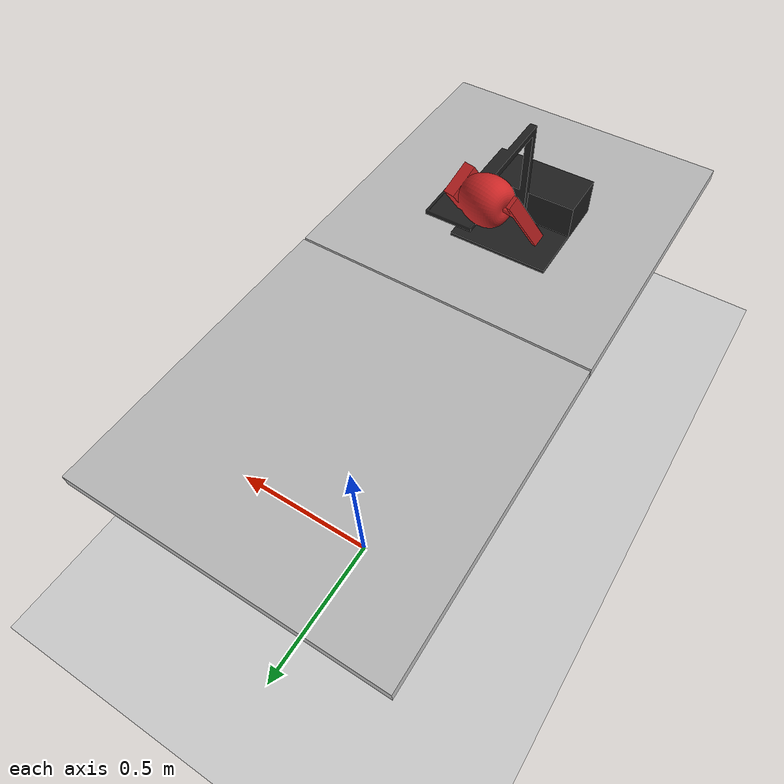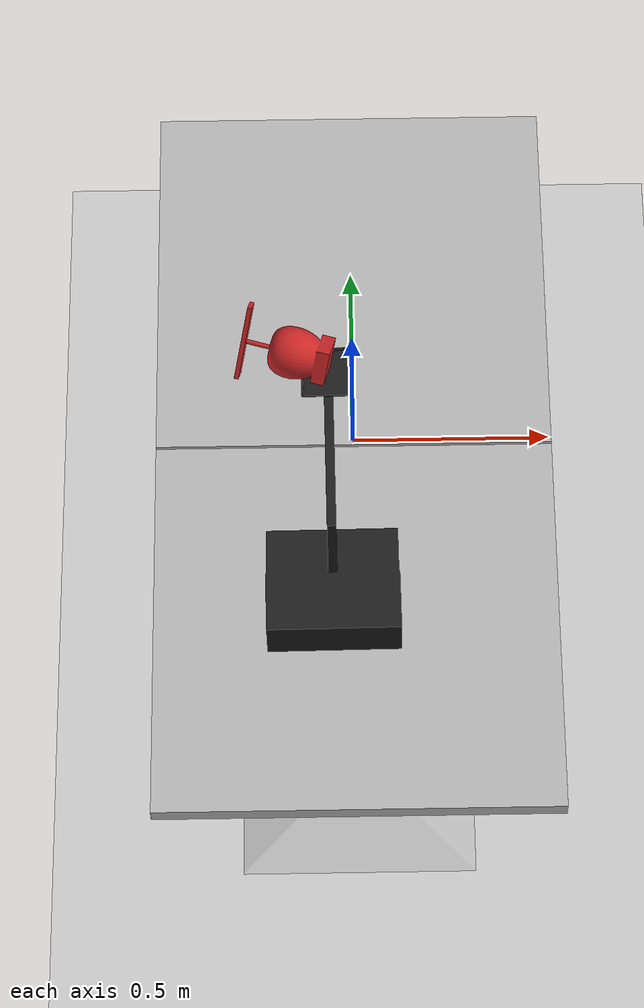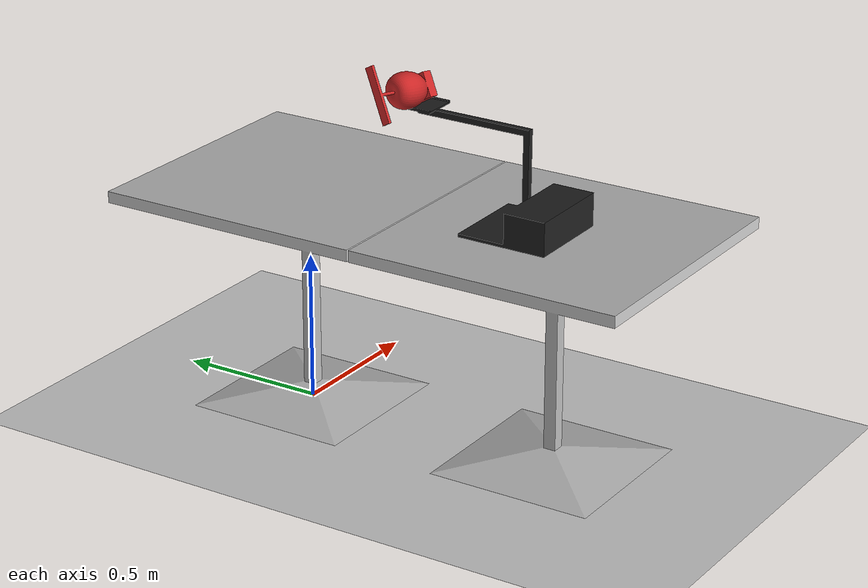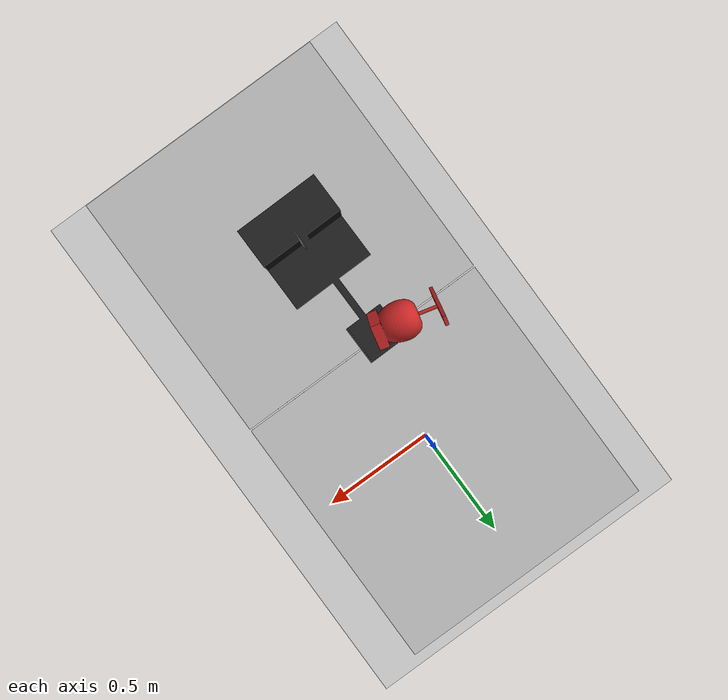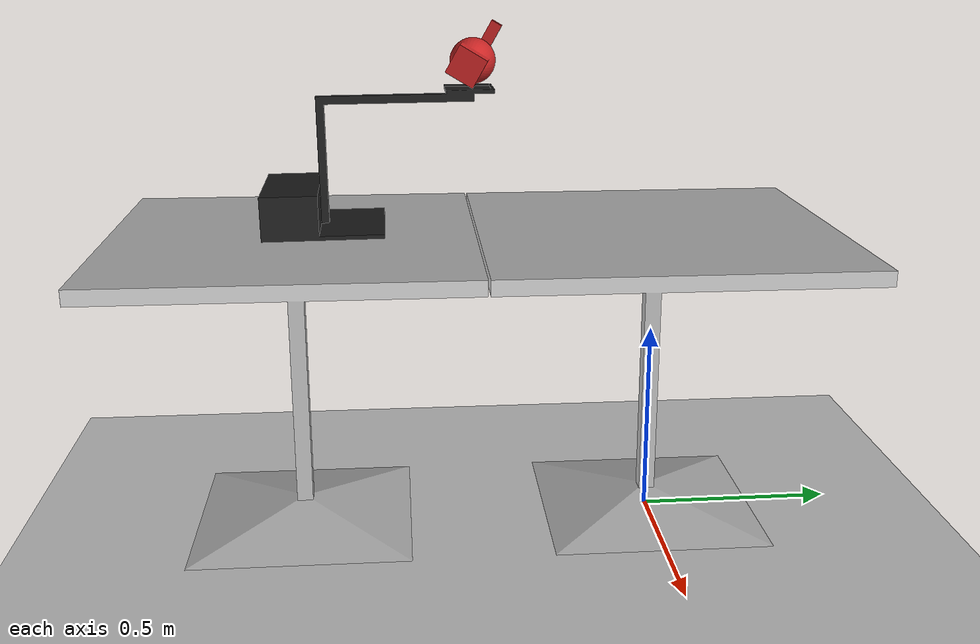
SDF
<sdf version="1.6">
 <world name="default">
  <light name="sun" type="directional">
   <pose>0 0 10 0 -0 0</pose>
   <diffuse>0.8 0.8 0.8 1</diffuse>
   <specular>0.1 0.1 0.1 1</specular>
   <attenuation>
    <range>1000</range>
    <constant>0.9</constant>
    <linear>0.01</linear>
    <quadratic>0.001</quadratic>
   </attenuation>
   <direction>-0.5 0.5 -1</direction>
  </light>
  <model name="ground_plane">
   <static>1</static>
   <link name="link">
    <collision name="collision">
     <geometry><plane><normal>0 0 1</normal><size>100 100</size></plane></geometry>
     <surface><friction><ode><mu>100</mu><mu2>50</mu2></ode></friction></surface>
    </collision>
    <visual name="visual">
     <cast_shadows>0</cast_shadows>
     <geometry><plane><normal>0 0 1</normal><size>100 100</size></plane></geometry>
     <material>
      <script><uri>file://media/materials/scripts/gazebo.material</uri><name>Gazebo/Grey</name></script>
     </material>
    </visual>
   </link>
  </model>
  <gravity>0 0 -9.8</gravity>
  <magnetic_field>6e-06 2.3e-05 -4.2e-05</magnetic_field>
  <atmosphere type="adiabatic"/>
  <physics name="default_physics" default="0" type="ode">
   <max_step_size>0.001</max_step_size>
   <real_time_factor>1</real_time_factor>
   <real_time_update_rate>1000</real_time_update_rate>
  </physics>
  <scene><ambient>0.4 0.4 0.4 1</ambient><background>0.7 0.7 0.7 1</background><shadows>1</shadows></scene>
  <spherical_coordinates>
   <surface_model>EARTH_WGS84</surface_model>
   <latitude_deg>0</latitude_deg>
   <longitude_deg>0</longitude_deg>
   <elevation>0</elevation>
   <heading_deg>0</heading_deg>
  </spherical_coordinates>
  <model name="cafe_table">
   <static>1</static>
   <link name="link">
    <collision name="surface">
     <pose>0 0 0.755 0 -0 0</pose>
     <geometry><box><size>0.913 0.913 0.04</size></box></geometry>
    </collision>
    <collision name="column">
     <pose>0 0 0.37 0 -0 0</pose>
     <geometry><box><size>0.042 0.042 0.74</size></box></geometry>
    </collision>
    <collision name="base">
     <pose>0 0 0.02 0 -0 0</pose>
     <geometry><box><size>0.56 0.56 0.04</size></box></geometry>
    </collision>
    <visual name="visual">
     <geometry><mesh><uri>model://cafe_table/meshes/cafe_table.dae</uri><scale>1 1 1</scale></mesh></geometry>
    </visual>
   </link>
  </model>
  <model name="cafe_table_0">
   <static>1</static>
   <link name="link">
    <collision name="surface">
     <pose>0 0 0.755 0 -0 0</pose>
     <geometry><box><size>0.913 0.913 0.04</size></box></geometry>
    </collision>
    <collision name="column">
     <pose>0 0 0.37 0 -0 0</pose>
     <geometry><box><size>0.042 0.042 0.74</size></box></geometry>
    </collision>
    <collision name="base">
     <pose>0 0 0.02 0 -0 0</pose>
     <geometry><box><size>0.56 0.56 0.04</size></box></geometry>
    </collision>
    <visual name="visual">
     <geometry><mesh><uri>model://cafe_table/meshes/cafe_table.dae</uri><scale>1 1 1</scale></mesh></geometry>
    </visual>
   </link>
   <pose>0 -0.92 0 0 -0 0</pose>
  </model>
  <model name="berry_stand_three">
   <static>1</static>
   <link name="link">
    <inertial>
     <inertia><ixx>0.001</ixx><ixy>0</ixy><ixz>0</ixz><iyy>0.001</iyy><iyz>0</iyz><izz>0.001</izz></inertia>
     <mass>3</mass>
    </inertial>
    <collision name="collision">
     <geometry>
      <mesh><uri>model://berry_stand_three/meshes/berry_stand_three.STL</uri><scale>0.001 0.001 0.001</scale></mesh>
     </geometry>
     <surface><friction><ode><mu>50</mu><mu2>100</mu2></ode></friction></surface>
    </collision>
    <visual name="visual">
     <cast_shadows>0</cast_shadows>
     <geometry>
      <mesh><uri>model://berry_stand_three/meshes/berry_stand_three.STL</uri><scale>0.001 0.001 0.001</scale></mesh>
     </geometry>
     <material>
      <script><uri>file://media/materials/scripts/gazebo.material</uri><name>Gazebo/Black</name></script>
     </material>
    </visual>
   </link>
   <pose>-0.199789 -0.991631 0.780042 1.5707 -0.009466 1.58083</pose>
  </model>
  <model name="berry_design_new">
   <static>0</static>
   <link name="link">
    <inertial>
     <inertia>
      <ixx>0.002586</ixx>
      <ixy>0</ixy>
      <ixz>0</ixz>
      <iyy>0.0027975</iyy>
      <iyz>0</iyz>
      <izz>0.0015441</izz>
     </inertia>
     <mass>1.004</mass>
    </inertial>
    <collision name="collision">
     <geometry>
      <mesh><uri>model://berry_design_new/meshes/berry_design_new.STL</uri><scale>0.001 0.001 0.001</scale></mesh>
     </geometry>
     <surface><friction><ode><mu>50</mu><mu2>100</mu2></ode></friction></surface>
    </collision>
    <visual name="visual">
     <cast_shadows>0</cast_shadows>
     <geometry>
      <mesh><uri>model://berry_design_new/meshes/berry_design_new.STL</uri><scale>0.001 0.001 0.001</scale></mesh>
     </geometry>
     <material>
      <script><uri>file://media/materials/scripts/gazebo.material</uri><name>Gazebo/Red</name></script>
     </material>
    </visual>
   </link>
   <pose>-0.056418 -0.46415 1.06736 0.159562 -1.03943 1.18271</pose>
  </model>
 </world>
</sdf>
